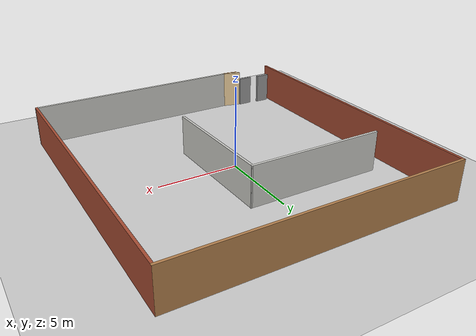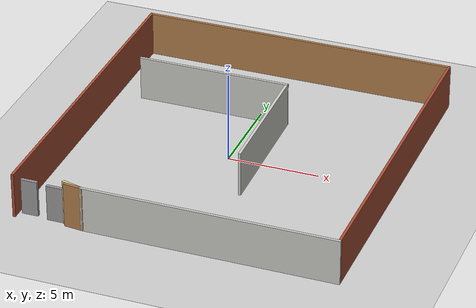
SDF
<sdf version="1.7">
 <world name="default">
  <light name="sun" type="directional">
   <pose>0 0 10 0 -0 0</pose>
   <diffuse>0.8 0.8 0.8 1</diffuse>
   <specular>0.2 0.2 0.2 1</specular>
   <attenuation>
    <range>1000</range>
    <constant>0.9</constant>
    <linear>0.01</linear>
    <quadratic>0.001</quadratic>
   </attenuation>
   <direction>-0.5 0.1 -0.9</direction>
   <spot><inner_angle>0</inner_angle><outer_angle>0</outer_angle><falloff>0</falloff></spot>
  </light>
  <model name="ground_plane">
   <static>1</static>
   <link name="link">
    <collision name="collision">
     <geometry><plane><normal>0 0 1</normal><size>100 100</size></plane></geometry>
     <surface>
      <contact><collide_bitmask>65535</collide_bitmask></contact>
      <friction><ode><mu>100</mu><mu2>50</mu2></ode></friction>
     </surface>
    </collision>
    <visual name="visual">
     <cast_shadows>0</cast_shadows>
     <geometry><plane><normal>0 0 1</normal><size>100 100</size></plane></geometry>
     <material>
      <script><uri>file://media/materials/scripts/gazebo.material</uri><name>Gazebo/Grey</name></script>
     </material>
    </visual>
   </link>
  </model>
  <model name="room_world">
   <pose>-2.45237 0.647455 0 0 -0 0</pose>
   <link name="Wall_11">
    <collision name="Wall_11_Collision">
     <geometry><box><size>8.5 0.15 2.5</size></box></geometry>
     <pose>0 0 1.25 0 -0 0</pose>
    </collision>
    <visual name="Wall_11_Visual">
     <pose>0 0 1.25 0 -0 0</pose>
     <geometry><box><size>8.5 0.15 2.5</size></box></geometry>
     <material>
      <script><uri>file://media/materials/scripts/gazebo.material</uri><name>Gazebo/CeilingTiled</name></script>
      <ambient>1 1 1 1</ambient>
     </material>
     <meta><layer>0</layer></meta>
    </visual>
    <pose>-0.082749 3.74518 0 0 -0 0</pose>
   </link>
   <link name="Wall_13">
    <collision name="Wall_13_Collision">
     <geometry><box><size>7.64214 0.15 2.5</size></box></geometry>
     <pose>0 0 1.25 0 -0 0</pose>
    </collision>
    <visual name="Wall_13_Visual">
     <pose>0 0 1.25 0 -0 0</pose>
     <geometry><box><size>7.64214 0.15 2.5</size></box></geometry>
     <material>
      <script><uri>file://media/materials/scripts/gazebo.material</uri><name>Gazebo/CeilingTiled</name></script>
      <ambient>0.760784 0.662745 0.627451 1</ambient>
     </material>
     <meta><layer>0</layer></meta>
    </visual>
    <pose>4.17419 -0 0 0 -0 1.59267</pose>
   </link>
   <static>1</static>
  </model>
  <model name="four_walls">
   <pose>0.520503 0.110881 0 0 -0 0</pose>
   <link name="Door_0">
    <collision name="Door_0_Collision">
     <geometry><box><size>0.9 0.17 2</size></box></geometry>
     <pose>0 0 1 0 -0 0</pose>
    </collision>
    <visual name="Door_0_Visual">
     <pose>0 0 1 0 -0 0</pose>
     <geometry><box><size>0.9 0.17 2</size></box></geometry>
     <material>
      <script><uri>file://media/materials/scripts/gazebo.material</uri><name>Gazebo/Grey</name></script>
     </material>
    </visual>
    <pose>-7.99848 -8.70198 0 0 -0 0</pose>
   </link>
   <link name="Door_1">
    <collision name="Door_1_Collision">
     <geometry><box><size>0.9 0.17 2</size></box></geometry>
     <pose>0 0 1 0 -0 0</pose>
    </collision>
    <visual name="Door_1_Visual">
     <pose>0 0 1 0 -0 0</pose>
     <geometry><box><size>0.9 0.17 2</size></box></geometry>
     <material>
      <script><uri>file://media/materials/scripts/gazebo.material</uri><name>Gazebo/Grey</name></script>
     </material>
    </visual>
    <pose>-6.54208 -8.82334 0 0 -0 0</pose>
   </link>
   <link name="Wall_2">
    <collision name="Wall_2_Collision">
     <geometry><box><size>18.5 0.15 2.5</size></box></geometry>
     <pose>0 0 1.25 0 -0 0</pose>
    </collision>
    <visual name="Wall_2_Visual">
     <pose>0 0 1.25 0 -0 0</pose>
     <geometry><box><size>18.5 0.15 2.5</size></box></geometry>
     <material>
      <script><uri>file://media/materials/scripts/gazebo.material</uri><name>Gazebo/Bricks</name></script>
      <ambient>1 1 1 1</ambient>
     </material>
     <meta><layer>0</layer></meta>
    </visual>
    <pose>-8.675 0.008427 0 0 -0 1.5708</pose>
   </link>
   <link name="Wall_3">
    <collision name="Wall_3_Collision">
     <geometry><box><size>17.5 0.15 2.5</size></box></geometry>
     <pose>0 0 1.25 0 -0 0</pose>
    </collision>
    <visual name="Wall_3_Visual">
     <pose>0 0 1.25 0 -0 0</pose>
     <geometry><box><size>17.5 0.15 2.5</size></box></geometry>
     <material>
      <script><uri>file://media/materials/scripts/gazebo.material</uri><name>Gazebo/Wood</name></script>
      <ambient>1 1 1 1</ambient>
     </material>
     <meta><layer>0</layer></meta>
    </visual>
    <pose>-0 9.18343 0 0 -0 0</pose>
   </link>
   <link name="Wall_4">
    <collision name="Wall_4_Collision">
     <geometry><box><size>18.5 0.15 2.5</size></box></geometry>
     <pose>0 0 1.25 0 -0 0</pose>
    </collision>
    <visual name="Wall_4_Visual">
     <pose>0 0 1.25 0 -0 0</pose>
     <geometry><box><size>18.5 0.15 2.5</size></box></geometry>
     <material>
      <script><uri>file://media/materials/scripts/gazebo.material</uri><name>Gazebo/Bricks</name></script>
      <ambient>0.435294 0.796078 0.67451 1</ambient>
     </material>
     <meta><layer>0</layer></meta>
    </visual>
    <pose>8.675 0.008427 0 0 -0 -1.5708</pose>
   </link>
   <link name="Wall_5">
    <collision name="Wall_5_Collision">
     <geometry><box><size>13.75 0.15 2.5</size></box></geometry>
     <pose>0 0 1.25 0 -0 0</pose>
    </collision>
    <visual name="Wall_5_Visual">
     <pose>0 0 1.25 0 -0 0</pose>
     <geometry><box><size>13.75 0.15 2.5</size></box></geometry>
     <material>
      <script><uri>file://media/materials/scripts/gazebo.material</uri><name>Gazebo/CeilingTiled</name></script>
      <ambient>0.921569 0.807843 0.615686 1</ambient>
     </material>
     <meta><layer>0</layer></meta>
    </visual>
    <pose>1.875 -9.16657 0 0 -0 3.14159</pose>
   </link>
   <link name="Wall_7">
    <collision name="Wall_7_Collision">
     <geometry><box><size>1.08475 0.15 2.5</size></box></geometry>
     <pose>0 0 1.25 0 -0 0</pose>
    </collision>
    <visual name="Wall_7_Visual">
     <pose>0 0 1.25 0 -0 0</pose>
     <geometry><box><size>1.08475 0.15 2.5</size></box></geometry>
     <material>
      <script><uri>file://media/materials/scripts/gazebo.material</uri><name>Gazebo/Wood</name></script>
      <ambient>0.921569 0.807843 0.615686 1</ambient>
     </material>
     <meta><layer>0</layer></meta>
    </visual>
    <pose>-5.38967 -9.11632 0 0 -0 -0.107719</pose>
   </link>
   <link name="Wall_8">
    <collision name="Wall_8_Collision">
     <geometry><box><size>1.25 0.15 2.5</size></box></geometry>
     <pose>0 0 1.25 0 -0 0</pose>
    </collision>
    <visual name="Wall_8_Visual">
     <pose>0 0 1.25 0 -0 0</pose>
     <geometry><box><size>1.25 0.15 2.5</size></box></geometry>
     <material>
      <script><uri>file://media/materials/scripts/gazebo.material</uri><name>Gazebo/Grey</name></script>
      <ambient>0.921569 0.807843 0.615686 1</ambient>
     </material>
     <meta><layer>0</layer></meta>
    </visual>
    <pose>-5.45626 -9.02422 0 0 -0 2.87979</pose>
   </link>
   <static>1</static>
  </model>
  <gravity>0 0 -9.8</gravity>
  <magnetic_field>6e-06 2.3e-05 -4.2e-05</magnetic_field>
  <atmosphere type="adiabatic"/>
  <physics type="ode">
   <max_step_size>0.001</max_step_size>
   <real_time_factor>1</real_time_factor>
   <real_time_update_rate>1000</real_time_update_rate>
  </physics>
  <scene><ambient>0.4 0.4 0.4 1</ambient><background>0.7 0.7 0.7 1</background><shadows>1</shadows></scene>
  <spherical_coordinates>
   <surface_model>EARTH_WGS84</surface_model>
   <latitude_deg>0</latitude_deg>
   <longitude_deg>0</longitude_deg>
   <elevation>0</elevation>
   <heading_deg>0</heading_deg>
  </spherical_coordinates>
  <light name="user_point_light_0" type="point">
   <pose>-5.65032 7.32921 1 0 -0 0</pose>
   <diffuse>0.5 0.5 0.5 1</diffuse>
   <specular>0.1 0.1 0.1 1</specular>
   <attenuation>
    <range>20</range>
    <constant>0.5</constant>
    <linear>0.01</linear>
    <quadratic>0.001</quadratic>
   </attenuation>
   <cast_shadows>0</cast_shadows>
   <direction>0 0 -1</direction>
  </light>
  <light name="user_point_light_1" type="point">
   <pose>1.46361 7.61503 1 0 -0 0</pose>
   <diffuse>0.5 0.5 0.5 1</diffuse>
   <specular>0.1 0.1 0.1 1</specular>
   <attenuation>
    <range>20</range>
    <constant>0.5</constant>
    <linear>0.01</linear>
    <quadratic>0.001</quadratic>
   </attenuation>
   <cast_shadows>0</cast_shadows>
   <direction>0 0 -1</direction>
  </light>
  <light name="user_point_light_2" type="point">
   <pose>7.30719 7.5515 1 0 -0 0</pose>
   <diffuse>0.5 0.5 0.5 1</diffuse>
   <specular>0.1 0.1 0.1 1</specular>
   <attenuation>
    <range>20</range>
    <constant>0.5</constant>
    <linear>0.01</linear>
    <quadratic>0.001</quadratic>
   </attenuation>
   <cast_shadows>0</cast_shadows>
   <direction>0 0 -1</direction>
  </light>
  <light name="user_point_light_3" type="point">
   <pose>7.1484 1.07276 1 0 -0 0</pose>
   <diffuse>0.5 0.5 0.5 1</diffuse>
   <specular>0.1 0.1 0.1 1</specular>
   <attenuation>
    <range>20</range>
    <constant>0.5</constant>
    <linear>0.01</linear>
    <quadratic>0.001</quadratic>
   </attenuation>
   <cast_shadows>0</cast_shadows>
   <direction>0 0 -1</direction>
  </light>
  <light name="user_point_light_4" type="point">
   <pose>1.30482 0.882203 1 0 -0 0</pose>
   <diffuse>0.5 0.5 0.5 1</diffuse>
   <specular>0.1 0.1 0.1 1</specular>
   <attenuation>
    <range>20</range>
    <constant>0.5</constant>
    <linear>0.01</linear>
    <quadratic>0.001</quadratic>
   </attenuation>
   <cast_shadows>0</cast_shadows>
   <direction>0 0 -1</direction>
  </light>
  <light name="user_point_light_5" type="point">
   <pose>-5.65032 0.786918 1 0 -0 0</pose>
   <diffuse>0.5 0.5 0.5 1</diffuse>
   <specular>0.1 0.1 0.1 1</specular>
   <attenuation>
    <range>20</range>
    <constant>0.5</constant>
    <linear>0.01</linear>
    <quadratic>0.001</quadratic>
   </attenuation>
   <cast_shadows>0</cast_shadows>
   <direction>0 0 -1</direction>
  </light>
  <light name="user_point_light_6" type="point">
   <pose>7.21191 -7.31153 1 0 -0 0</pose>
   <diffuse>0.5 0.5 0.5 1</diffuse>
   <specular>0.1 0.1 0.1 1</specular>
   <attenuation>
    <range>20</range>
    <constant>0.5</constant>
    <linear>0.01</linear>
    <quadratic>0.001</quadratic>
   </attenuation>
   <cast_shadows>0</cast_shadows>
   <direction>0 0 -1</direction>
  </light>
  <light name="user_point_light_7" type="point">
   <pose>1.17778 -6.35877 1 0 -0 0</pose>
   <diffuse>0.5 0.5 0.5 1</diffuse>
   <specular>0.1 0.1 0.1 1</specular>
   <attenuation>
    <range>20</range>
    <constant>0.5</constant>
    <linear>0.01</linear>
    <quadratic>0.001</quadratic>
   </attenuation>
   <cast_shadows>0</cast_shadows>
   <direction>0 0 -1</direction>
  </light>
  <light name="user_point_light_8" type="point">
   <pose>-5.99967 -6.80338 1 0 -0 0</pose>
   <diffuse>0.5 0.5 0.5 1</diffuse>
   <specular>0.1 0.1 0.1 1</specular>
   <attenuation>
    <range>20</range>
    <constant>0.5</constant>
    <linear>0.01</linear>
    <quadratic>0.001</quadratic>
   </attenuation>
   <cast_shadows>0</cast_shadows>
   <direction>0 0 -1</direction>
  </light>
  <light name="user_point_light_9" type="point">
   <pose>-2.15688 -3.05587 1 0 -0 0</pose>
   <diffuse>0.5 0.5 0.5 1</diffuse>
   <specular>0.1 0.1 0.1 1</specular>
   <attenuation>
    <range>20</range>
    <constant>0.5</constant>
    <linear>0.01</linear>
    <quadratic>0.001</quadratic>
   </attenuation>
   <cast_shadows>0</cast_shadows>
   <direction>0 0 -1</direction>
  </light>
  <light name="user_point_light_10" type="point">
   <pose>4.86177 -2.92883 1 0 -0 0</pose>
   <diffuse>0.5 0.5 0.5 1</diffuse>
   <specular>0.1 0.1 0.1 1</specular>
   <attenuation>
    <range>20</range>
    <constant>0.5</constant>
    <linear>0.01</linear>
    <quadratic>0.001</quadratic>
   </attenuation>
   <cast_shadows>0</cast_shadows>
   <direction>0 0 -1</direction>
  </light>
  <light name="user_point_light_11" type="point">
   <pose>4.83002 4.59796 1 0 -0 0</pose>
   <diffuse>0.5 0.5 0.5 1</diffuse>
   <specular>0.1 0.1 0.1 1</specular>
   <attenuation>
    <range>20</range>
    <constant>0.5</constant>
    <linear>0.01</linear>
    <quadratic>0.001</quadratic>
   </attenuation>
   <cast_shadows>0</cast_shadows>
   <direction>0 0 -1</direction>
  </light>
  <light name="user_point_light_12" type="point">
   <pose>-1.96632 4.91554 1 0 -0 0</pose>
   <diffuse>0.5 0.5 0.5 1</diffuse>
   <specular>0.1 0.1 0.1 1</specular>
   <attenuation>
    <range>20</range>
    <constant>0.5</constant>
    <linear>0.01</linear>
    <quadratic>0.001</quadratic>
   </attenuation>
   <cast_shadows>0</cast_shadows>
   <direction>0 0 -1</direction>
  </light>
 </world>
</sdf>
